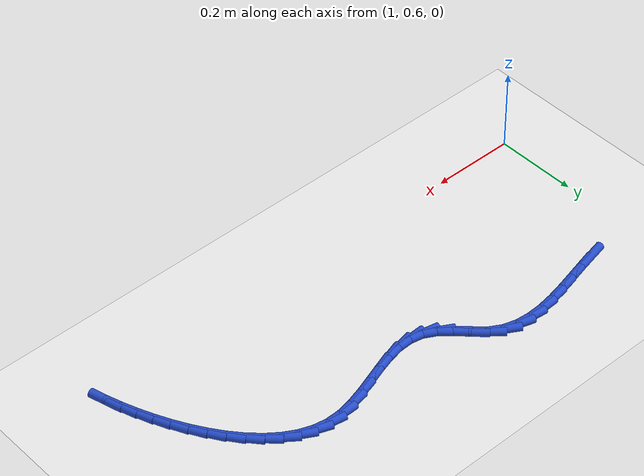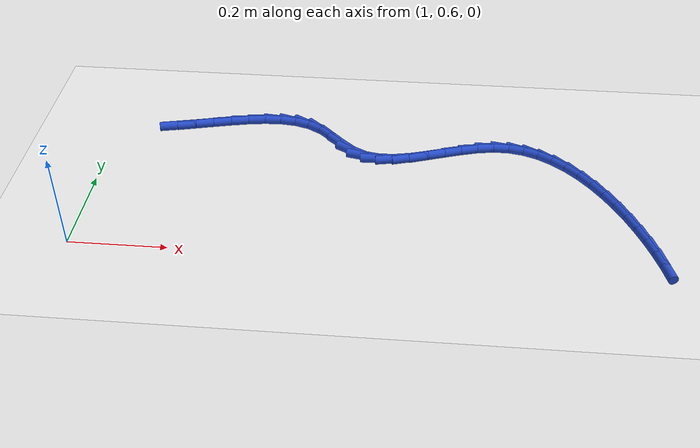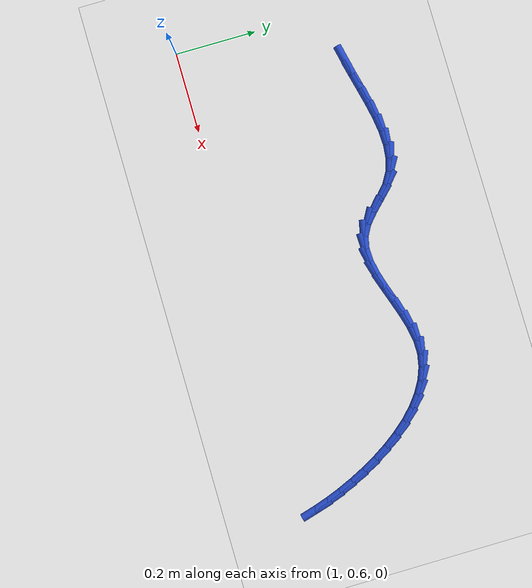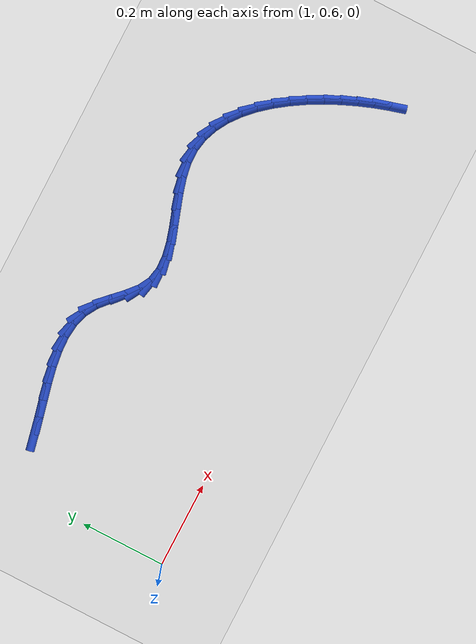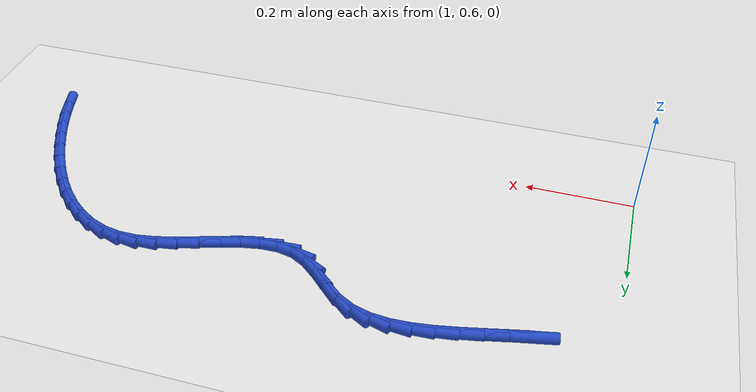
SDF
<sdf version="1.6">
 <world name="default">
  <model name="ground_plane">
   <static>1</static>
   <link name="link">
    <collision name="collision">
     <geometry><plane><normal>0 0 1</normal><size>100 100</size></plane></geometry>
     <surface><friction><ode><mu>100</mu><mu2>50</mu2></ode></friction></surface>
    </collision>
    <visual name="visual">
     <cast_shadows>0</cast_shadows>
     <geometry><plane><normal>0 0 1</normal><size>100 100</size></plane></geometry>
     <material>
      <script><uri>file://media/materials/scripts/gazebo.material</uri><name>Gazebo/WhiteGlow</name></script>
     </material>
    </visual>
   </link>
  </model>
  <model name="line">
   <link name="link_52">
    <pose>1.1322643742402994 0.9910449257052864 0.01 0 1.57 0.21402043840707194</pose>
    <collision name="collision">
     <geometry><cylinder><radius>0.01</radius><length>0.08</length></cylinder></geometry>
    </collision>
    <visual name="visual">
     <material>
      <script><name>Gazebo/Blue</name><uri>file://media/materials/scripts/gazebo.material</uri></script>
     </material>
     <geometry><cylinder><radius>0.01</radius><length>0.08</length></cylinder></geometry>
    </visual>
   </link>
   <link name="link_53">
    <pose>1.1701911569333727 0.9992882799746642 0.01 0 1.57 0.23555821225678733</pose>
    <collision name="collision">
     <geometry><cylinder><radius>0.01</radius><length>0.08</length></cylinder></geometry>
    </collision>
    <visual name="visual">
     <material>
      <script><name>Gazebo/Blue</name><uri>file://media/materials/scripts/gazebo.material</uri></script>
     </material>
     <geometry><cylinder><radius>0.01</radius><length>0.08</length></cylinder></geometry>
    </visual>
   </link>
   <link name="link_54">
    <pose>1.2086831706018553 1.0085269019014396 0.01 0 1.57 0.23037090674319213</pose>
    <collision name="collision">
     <geometry><cylinder><radius>0.01</radius><length>0.08</length></cylinder></geometry>
    </collision>
    <visual name="visual">
     <material>
      <script><name>Gazebo/Blue</name><uri>file://media/materials/scripts/gazebo.material</uri></script>
     </material>
     <geometry><cylinder><radius>0.01</radius><length>0.08</length></cylinder></geometry>
    </visual>
   </link>
   <link name="link_55">
    <pose>1.247256457879886 1.017573673844811 0.01 0 1.57 0.19824392442982408</pose>
    <collision name="collision">
     <geometry><cylinder><radius>0.01</radius><length>0.08</length></cylinder></geometry>
    </collision>
    <visual name="visual">
     <material>
      <script><name>Gazebo/Blue</name><uri>file://media/materials/scripts/gazebo.material</uri></script>
     </material>
     <geometry><cylinder><radius>0.01</radius><length>0.08</length></cylinder></geometry>
    </visual>
   </link>
   <link name="link_56">
    <pose>1.2854270614016032 1.0252414781639763 0.01 0 1.57 0.13598960242928598</pose>
    <collision name="collision">
     <geometry><cylinder><radius>0.01</radius><length>0.08</length></cylinder></geometry>
    </collision>
    <visual name="visual">
     <material>
      <script><name>Gazebo/Blue</name><uri>file://media/materials/scripts/gazebo.material</uri></script>
     </material>
     <geometry><cylinder><radius>0.01</radius><length>0.08</length></cylinder></geometry>
    </visual>
   </link>
   <link name="link_57">
    <pose>1.3227110238011446 1.0303431972181332 0.01 0 1.57 0.03753151368361002</pose>
    <collision name="collision">
     <geometry><cylinder><radius>0.01</radius><length>0.08</length></cylinder></geometry>
    </collision>
    <visual name="visual">
     <material>
      <script><name>Gazebo/Blue</name><uri>file://media/materials/scripts/gazebo.material</uri></script>
     </material>
     <geometry><cylinder><radius>0.01</radius><length>0.08</length></cylinder></geometry>
    </visual>
   </link>
   <link name="link_58">
    <pose>1.3586243877126483 1.0316917133664794 0.01 0 1.57 -0.10507053075840908</pose>
    <collision name="collision">
     <geometry><cylinder><radius>0.01</radius><length>0.08</length></cylinder></geometry>
    </collision>
    <visual name="visual">
     <material>
      <script><name>Gazebo/Blue</name><uri>file://media/materials/scripts/gazebo.material</uri></script>
     </material>
     <geometry><cylinder><radius>0.01</radius><length>0.08</length></cylinder></geometry>
    </visual>
   </link>
   <link name="link_59">
    <pose>1.3926831957702541 1.028099908968214 0.01 0 1.57 -0.29732211980720374</pose>
    <collision name="collision">
     <geometry><cylinder><radius>0.01</radius><length>0.08</length></cylinder></geometry>
    </collision>
    <visual name="visual">
     <material>
      <script><name>Gazebo/Blue</name><uri>file://media/materials/scripts/gazebo.material</uri></script>
     </material>
     <geometry><cylinder><radius>0.01</radius><length>0.08</length></cylinder></geometry>
    </visual>
   </link>
   <link name="link_60">
    <pose>1.4244034906080993 1.0183806663825337 0.01 0 1.57 -0.5316618850577869</pose>
    <collision name="collision">
     <geometry><cylinder><radius>0.01</radius><length>0.08</length></cylinder></geometry>
    </collision>
    <visual name="visual">
     <material>
      <script><name>Gazebo/Blue</name><uri>file://media/materials/scripts/gazebo.material</uri></script>
     </material>
     <geometry><cylinder><radius>0.01</radius><length>0.08</length></cylinder></geometry>
    </visual>
   </link>
   <link name="link_61">
    <pose>1.4533120705243034 1.0013780388902505 0.01 0 1.57 -0.7247638343255108</pose>
    <collision name="collision">
     <geometry><cylinder><radius>0.01</radius><length>0.08</length></cylinder></geometry>
    </collision>
    <visual name="visual">
     <material>
      <script><name>Gazebo/Blue</name><uri>file://media/materials/scripts/gazebo.material</uri></script>
     </material>
     <geometry><cylinder><radius>0.01</radius><length>0.08</length></cylinder></geometry>
    </visual>
   </link>
   <link name="link_62">
    <pose>1.479662917902621 0.9780435273618503 0.01 0 1.57 -0.786984152612401</pose>
    <collision name="collision">
     <geometry><cylinder><radius>0.01</radius><length>0.08</length></cylinder></geometry>
    </collision>
    <visual name="visual">
     <material>
      <script><name>Gazebo/Blue</name><uri>file://media/materials/scripts/gazebo.material</uri></script>
     </material>
     <geometry><cylinder><radius>0.01</radius><length>0.08</length></cylinder></geometry>
    </visual>
   </link>
   <link name="link_63">
    <pose>1.5048869135632463 0.952739394567252 0.01 0 1.57 -0.7225662436019631</pose>
    <collision name="collision">
     <geometry><cylinder><radius>0.01</radius><length>0.08</length></cylinder></geometry>
    </collision>
    <visual name="visual">
     <material>
      <script><name>Gazebo/Blue</name><uri>file://media/materials/scripts/gazebo.material</uri></script>
     </material>
     <geometry><cylinder><radius>0.01</radius><length>0.08</length></cylinder></geometry>
    </visual>
   </link>
   <link name="link_64">
    <pose>1.5305222250842159 0.9301388303493002 0.01 0 1.57 -0.5069591283011272</pose>
    <collision name="collision">
     <geometry><cylinder><radius>0.01</radius><length>0.08</length></cylinder></geometry>
    </collision>
    <visual name="visual">
     <material>
      <script><name>Gazebo/Blue</name><uri>file://media/materials/scripts/gazebo.material</uri></script>
     </material>
     <geometry><cylinder><radius>0.01</radius><length>0.08</length></cylinder></geometry>
    </visual>
   </link>
   <link name="link_65">
    <pose>1.5580817522650356 0.914833008202309 0.01 0 1.57 -0.20396473009154428</pose>
    <collision name="collision">
     <geometry><cylinder><radius>0.01</radius><length>0.08</length></cylinder></geometry>
    </collision>
    <visual name="visual">
     <material>
      <script><name>Gazebo/Blue</name><uri>file://media/materials/scripts/gazebo.material</uri></script>
     </material>
     <geometry><cylinder><radius>0.01</radius><length>0.08</length></cylinder></geometry>
    </visual>
   </link>
   <link name="link_66">
    <pose>1.5882119869903417 0.9086008396156323 0.01 0 1.57 0.03625475321395188</pose>
    <collision name="collision">
     <geometry><cylinder><radius>0.01</radius><length>0.08</length></cylinder></geometry>
    </collision>
    <visual name="visual">
     <material>
      <script><name>Gazebo/Blue</name><uri>file://media/materials/scripts/gazebo.material</uri></script>
     </material>
     <geometry><cylinder><radius>0.01</radius><length>0.08</length></cylinder></geometry>
    </visual>
   </link>
   <link name="link_67">
    <pose>1.620496719772007 0.9097718277318828 0.01 0 1.57 0.1945889978544093</pose>
    <collision name="collision">
     <geometry><cylinder><radius>0.01</radius><length>0.08</length></cylinder></geometry>
    </collision>
    <visual name="visual">
     <material>
      <script><name>Gazebo/Blue</name><uri>file://media/materials/scripts/gazebo.material</uri></script>
     </material>
     <geometry><cylinder><radius>0.01</radius><length>0.08</length></cylinder></geometry>
    </visual>
   </link>
   <link name="link_68">
    <pose>1.6544547007094565 0.916464361878136 0.01 0 1.57 0.2859006213275771</pose>
    <collision name="collision">
     <geometry><cylinder><radius>0.01</radius><length>0.08</length></cylinder></geometry>
    </collision>
    <visual name="visual">
     <material>
      <script><name>Gazebo/Blue</name><uri>file://media/materials/scripts/gazebo.material</uri></script>
     </material>
     <geometry><cylinder><radius>0.01</radius><length>0.08</length></cylinder></geometry>
    </visual>
   </link>
   <link name="link_69">
    <pose>1.6896046799021138 0.9267968313814663 0.01 0 1.57 0.32519037349739477</pose>
    <collision name="collision">
     <geometry><cylinder><radius>0.01</radius><length>0.08</length></cylinder></geometry>
    </collision>
    <visual name="visual">
     <material>
      <script><name>Gazebo/Blue</name><uri>file://media/materials/scripts/gazebo.material</uri></script>
     </material>
     <geometry><cylinder><radius>0.01</radius><length>0.08</length></cylinder></geometry>
    </visual>
   </link>
   <link name="link_70">
    <pose>1.725465407449402 0.9388876255689487 0.01 0 1.57 0.32018947585189433</pose>
    <collision name="collision">
     <geometry><cylinder><radius>0.01</radius><length>0.08</length></cylinder></geometry>
    </collision>
    <visual name="visual">
     <material>
      <script><name>Gazebo/Blue</name><uri>file://media/materials/scripts/gazebo.material</uri></script>
     </material>
     <geometry><cylinder><radius>0.01</radius><length>0.08</length></cylinder></geometry>
    </visual>
   </link>
   <link name="link_71">
    <pose>1.7615556334507454 0.9508551337676583 0.01 0 1.57 0.271140595921244</pose>
    <collision name="collision">
     <geometry><cylinder><radius>0.01</radius><length>0.08</length></cylinder></geometry>
    </collision>
    <visual name="visual">
     <material>
      <script><name>Gazebo/Blue</name><uri>file://media/materials/scripts/gazebo.material</uri></script>
     </material>
     <geometry><cylinder><radius>0.01</radius><length>0.08</length></cylinder></geometry>
    </visual>
   </link>
   <link name="link_72">
    <pose>1.7973941080055675 0.96081774530467 0.01 0 1.57 0.17138346623998035</pose>
    <collision name="collision">
     <geometry><cylinder><radius>0.01</radius><length>0.08</length></cylinder></geometry>
    </collision>
    <visual name="visual">
     <material>
      <script><name>Gazebo/Blue</name><uri>file://media/materials/scripts/gazebo.material</uri></script>
     </material>
     <geometry><cylinder><radius>0.01</radius><length>0.08</length></cylinder></geometry>
    </visual>
   </link>
   <link name="link_73">
    <pose>1.8324995812132931 0.9668938495070588 0.01 0 1.57 0.010245570493948333</pose>
    <collision name="collision">
     <geometry><cylinder><radius>0.01</radius><length>0.08</length></cylinder></geometry>
    </collision>
    <visual name="visual">
     <material>
      <script><name>Gazebo/Blue</name><uri>file://media/materials/scripts/gazebo.material</uri></script>
     </material>
     <geometry><cylinder><radius>0.01</radius><length>0.08</length></cylinder></geometry>
    </visual>
   </link>
   <link name="link_74">
    <pose>1.8663974870061282 0.9672411650433107 0.01 0 1.57 -0.18547528835380575</pose>
    <collision name="collision">
     <geometry><cylinder><radius>0.01</radius><length>0.08</length></cylinder></geometry>
    </collision>
    <visual name="visual">
     <material>
      <script><name>Gazebo/Blue</name><uri>file://media/materials/scripts/gazebo.material</uri></script>
     </material>
     <geometry><cylinder><radius>0.01</radius><length>0.08</length></cylinder></geometry>
    </visual>
   </link>
   <link name="link_75">
    <pose>1.8988074413853195 0.9611600263738971 0.01 0 1.57 -0.3684871109610969</pose>
    <collision name="collision">
     <geometry><cylinder><radius>0.01</radius><length>0.08</length></cylinder></geometry>
    </collision>
    <visual name="visual">
     <material>
      <script><name>Gazebo/Blue</name><uri>file://media/materials/scripts/gazebo.material</uri></script>
     </material>
     <geometry><cylinder><radius>0.01</radius><length>0.08</length></cylinder></geometry>
    </visual>
   </link>
   <link name="link_76">
    <pose>1.9296687925978837 0.949243727372425 0.01 0 1.57 -0.5285334176735977</pose>
    <collision name="collision">
     <geometry><cylinder><radius>0.01</radius><length>0.08</length></cylinder></geometry>
    </collision>
    <visual name="visual">
     <material>
      <script><name>Gazebo/Blue</name><uri>file://media/materials/scripts/gazebo.material</uri></script>
     </material>
     <geometry><cylinder><radius>0.01</radius><length>0.08</length></cylinder></geometry>
    </visual>
   </link>
   <link name="link_77">
    <pose>1.9589327072487706 0.9321551040822669 0.01 0 1.57 -0.6636935758203714</pose>
    <collision name="collision">
     <geometry><cylinder><radius>0.01</radius><length>0.08</length></cylinder></geometry>
    </collision>
    <visual name="visual">
     <material>
      <script><name>Gazebo/Blue</name><uri>file://media/materials/scripts/gazebo.material</uri></script>
     </material>
     <geometry><cylinder><radius>0.01</radius><length>0.08</length></cylinder></geometry>
    </visual>
   </link>
   <link name="link_78">
    <pose>1.986550351942931 0.9105569925467946 0.01 0 1.57 -0.7760972310815037</pose>
    <collision name="collision">
     <geometry><cylinder><radius>0.01</radius><length>0.08</length></cylinder></geometry>
    </collision>
    <visual name="visual">
     <material>
      <script><name>Gazebo/Blue</name><uri>file://media/materials/scripts/gazebo.material</uri></script>
     </material>
     <geometry><cylinder><radius>0.01</radius><length>0.08</length></cylinder></geometry>
    </visual>
   </link>
   <link name="link_79">
    <pose>2.0124728932853158 0.8851122288093792 0.01 0 1.57 -0.8694679101598676</pose>
    <collision name="collision">
     <geometry><cylinder><radius>0.01</radius><length>0.08</length></cylinder></geometry>
    </collision>
    <visual name="visual">
     <material>
      <script><name>Gazebo/Blue</name><uri>file://media/materials/scripts/gazebo.material</uri></script>
     </material>
     <geometry><cylinder><radius>0.01</radius><length>0.08</length></cylinder></geometry>
    </visual>
   </link>
   <link name="link_80">
    <pose>2.0366514978808747 0.8564836489133938 0.01 0 1.57 -0.9476586362058542</pose>
    <collision name="collision">
     <geometry><cylinder><radius>0.01</radius><length>0.08</length></cylinder></geometry>
    </collision>
    <visual name="visual">
     <material>
      <script><name>Gazebo/Blue</name><uri>file://media/materials/scripts/gazebo.material</uri></script>
     </material>
     <geometry><cylinder><radius>0.01</radius><length>0.08</length></cylinder></geometry>
    </visual>
   </link>
   <link name="link_81">
    <pose>2.059037332334558 0.8253340889022096 0.01 0 1.57 -1.0140637083343997</pose>
    <collision name="collision">
     <geometry><cylinder><radius>0.01</radius><length>0.08</length></cylinder></geometry>
    </collision>
    <visual name="visual">
     <material>
      <script><name>Gazebo/Blue</name><uri>file://media/materials/scripts/gazebo.material</uri></script>
     </material>
     <geometry><cylinder><radius>0.01</radius><length>0.08</length></cylinder></geometry>
    </visual>
   </link>
   <link name="link_82">
    <pose>2.0795815632513177 0.7923263848191985 0.01 0 1.57 -1.071503560902838</pose>
    <collision name="collision">
     <geometry><cylinder><radius>0.01</radius><length>0.08</length></cylinder></geometry>
    </collision>
    <visual name="visual">
     <material>
      <script><name>Gazebo/Blue</name><uri>file://media/materials/scripts/gazebo.material</uri></script>
     </material>
     <geometry><cylinder><radius>0.01</radius><length>0.08</length></cylinder></geometry>
    </visual>
   </link>
   <link name="link_83">
    <pose>2.0982353572361028 0.758123372707733 0.01 0 1.57 -1.122305987344747</pose>
    <collision name="collision">
     <geometry><cylinder><radius>0.01</radius><length>0.08</length></cylinder></geometry>
    </collision>
    <visual name="visual">
     <material>
      <script><name>Gazebo/Blue</name><uri>file://media/materials/scripts/gazebo.material</uri></script>
     </material>
     <geometry><cylinder><radius>0.01</radius><length>0.08</length></cylinder></geometry>
    </visual>
   </link>
   <link name="link_84">
    <pose>2.114949880893863 0.7233878886111841 0.01 0 1.57 -1.1684600369923424</pose>
    <collision name="collision">
     <geometry><cylinder><radius>0.01</radius><length>0.08</length></cylinder></geometry>
    </collision>
    <visual name="visual">
     <material>
      <script><name>Gazebo/Blue</name><uri>file://media/materials/scripts/gazebo.material</uri></script>
     </material>
     <geometry><cylinder><radius>0.01</radius><length>0.08</length></cylinder></geometry>
    </visual>
   </link>
   <link name="link_85">
    <pose>2.1296767037956688 0.688781314012515 0.01 0 1.57 -1.2123800902563746</pose>
    <collision name="collision">
     <geometry><cylinder><radius>0.01</radius><length>0.08</length></cylinder></geometry>
    </collision>
    <visual name="visual">
     <material>
      <script><name>Gazebo/Blue</name><uri>file://media/materials/scripts/gazebo.material</uri></script>
     </material>
     <geometry><cylinder><radius>0.01</radius><length>0.08</length></cylinder></geometry>
    </visual>
   </link>
   <link name="link_86">
    <pose>2.1424334310110305 0.6547266663799668 0.01 0 1.57 -1.255775339946528</pose>
    <collision name="collision">
     <geometry><cylinder><radius>0.01</radius><length>0.08</length></cylinder></geometry>
    </collision>
    <visual name="visual">
     <material>
      <script><name>Gazebo/Blue</name><uri>file://media/materials/scripts/gazebo.material</uri></script>
     </material>
     <geometry><cylinder><radius>0.01</radius><length>0.08</length></cylinder></geometry>
    </visual>
   </link>
   <link name="link_87">
    <pose>2.1533764558288 0.6211459884342974 0.01 0 1.57 -1.2979599417403043</pose>
    <collision name="collision">
     <geometry><cylinder><radius>0.01</radius><length>0.08</length></cylinder></geometry>
    </collision>
    <visual name="visual">
     <material>
      <script><name>Gazebo/Blue</name><uri>file://media/materials/scripts/gazebo.material</uri></script>
     </material>
     <geometry><cylinder><radius>0.01</radius><length>0.08</length></cylinder></geometry>
    </visual>
   </link>
  </model>
 </world>
</sdf>
